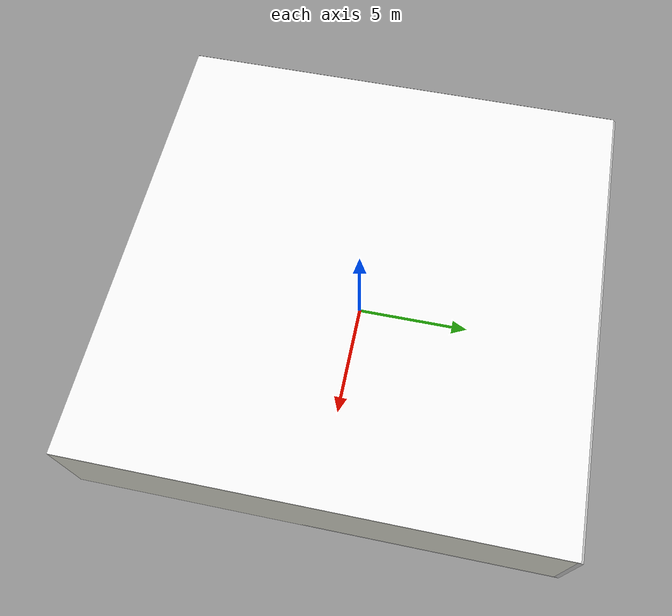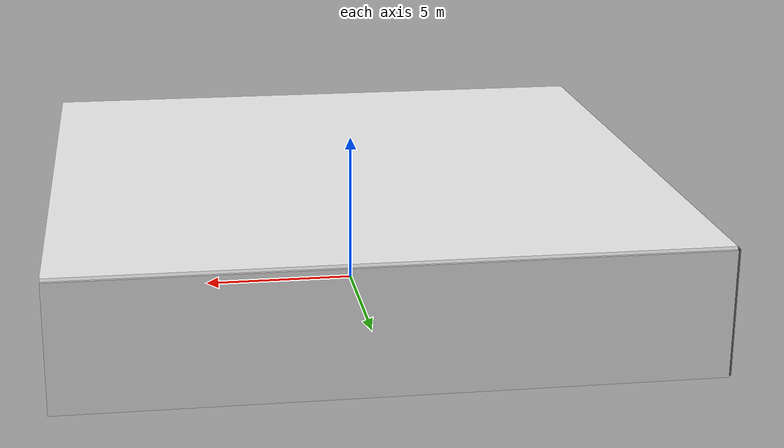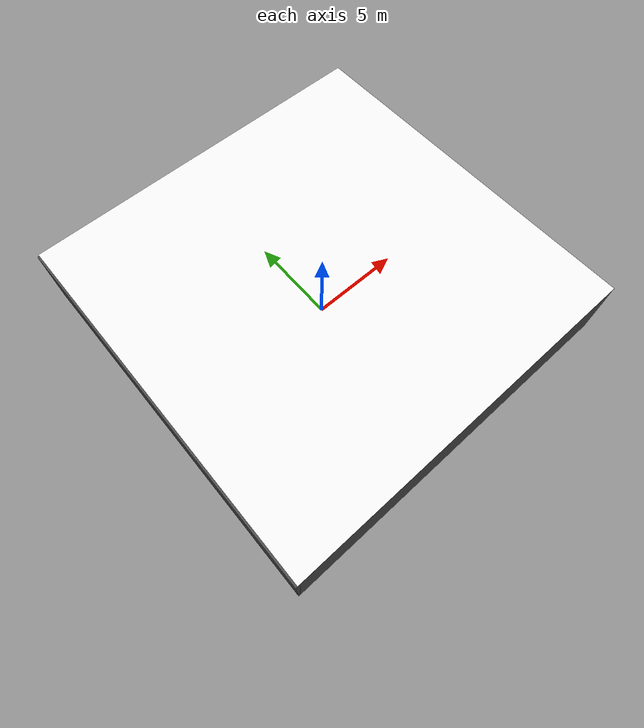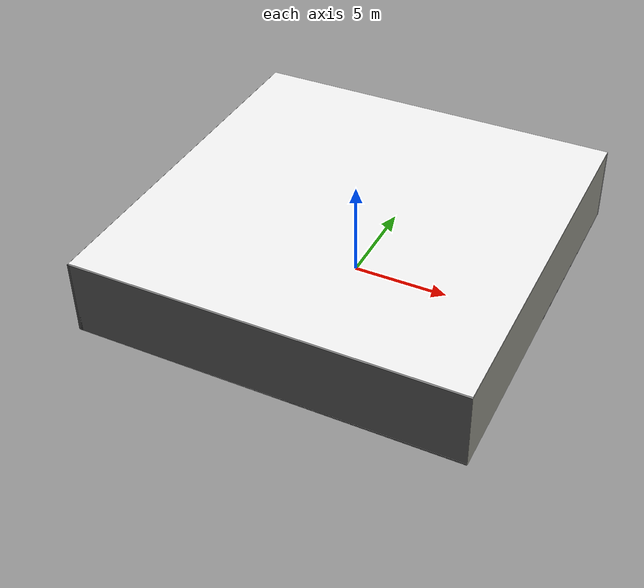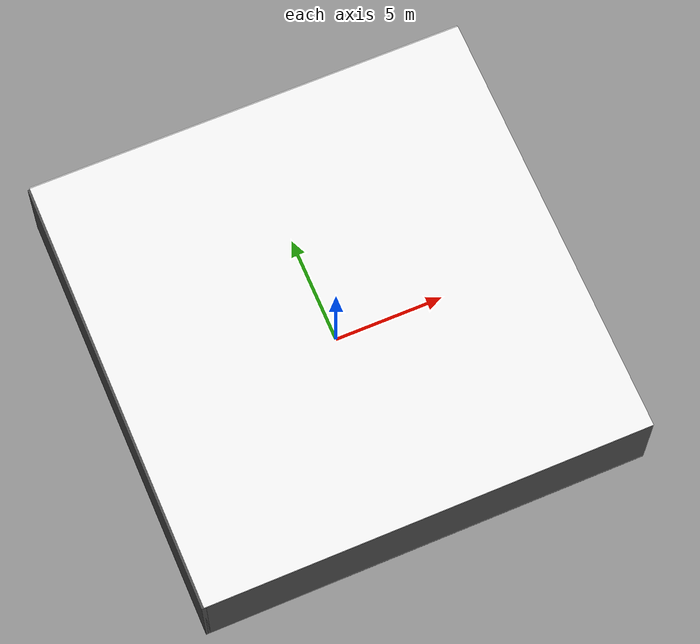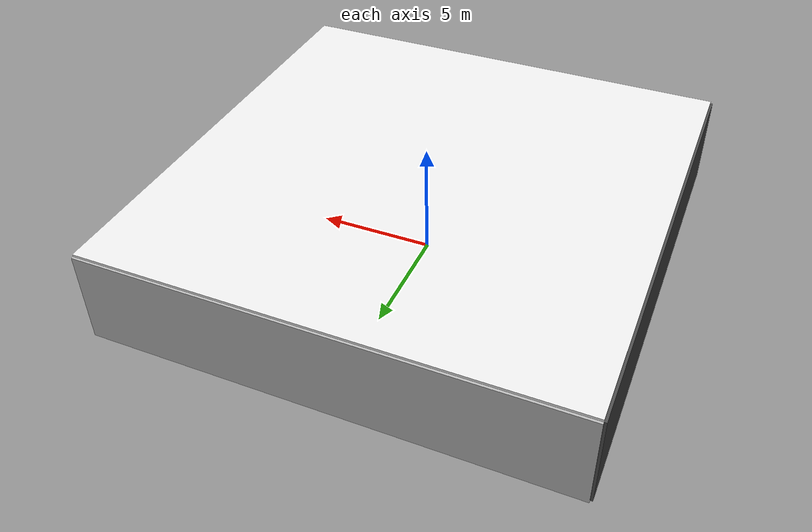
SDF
<sdf version="1.4">
 <world name="default">
  <physics type="ode">
   <max_step_size>0.001</max_step_size>
   <real_time_factor>1</real_time_factor>
   <real_time_update_rate>1000</real_time_update_rate>
   <gravity>0 0 -9.8</gravity>
  </physics>
  <scene><ambient>0.4 0.4 0.4 1</ambient><background>0.7 0.7 0.7 1</background><shadows>1</shadows></scene>
  <model name="Surrounding">
   <static>1</static>
   <link name="Ceiling">
    <collision name="Ceiling_Collision"><geometry><box><size>20 20 0.1</size></box></geometry></collision>
    <visual name="Ceiling_Visual">
     <geometry><box><size>20 20 0.1</size></box></geometry>
     <material>
      <script><uri>file://media/materials/scripts/gazebo.material</uri><name>Gazebo/WhiteGlow</name></script>
     </material>
    </visual>
    <pose>0 0 4.05 0 0 0</pose>
   </link>
   <link name="Wall_South">
    <collision name="Wall_South_Collision">
     <geometry><box><size>20 0 4</size></box></geometry>
     <pose>0 0 2 0 -0 0</pose>
    </collision>
    <visual name="Wall_South_Visual">
     <pose>0 0 2 0 -0 0</pose>
     <geometry><box><size>20 0 4</size></box></geometry>
     <material>
      <script><uri>file://media/materials/scripts/gazebo.material</uri><name>Gazebo/DarkGrey</name></script>
     </material>
    </visual>
    <velocity_decay><linear>0</linear><angular>0</angular></velocity_decay>
    <pose>0 -10 0 0 -0 0</pose>
   </link>
   <link name="Wall_East">
    <collision name="Wall_21_Collision">
     <geometry><box><size>20 0 4</size></box></geometry>
     <pose>0 0 2 0 -0 0</pose>
    </collision>
    <visual name="Wall_21_Visual">
     <pose>0 0 2 0 -0 0</pose>
     <geometry><box><size>20 0 4</size></box></geometry>
     <material>
      <script><uri>file://media/materials/scripts/gazebo.material</uri><name>Gazebo/PaintedWall</name></script>
     </material>
    </visual>
    <velocity_decay><linear>0</linear><angular>0</angular></velocity_decay>
    <pose>10 0 0 0 -0 1.5708</pose>
   </link>
   <link name="Wall_North">
    <collision name="Wall_22_Collision">
     <geometry><box><size>20 0.2 4</size></box></geometry>
     <pose>0 0 2 0 -0 0</pose>
    </collision>
    <visual name="Wall_22_Visual">
     <pose>0 0 2 0 -0 0</pose>
     <geometry><box><size>20 0.2 4</size></box></geometry>
     <material>
      <script><uri>file://media/materials/scripts/gazebo.material</uri><name>Gazebo/Pioneer2Body</name></script>
     </material>
    </visual>
    <velocity_decay><linear>0</linear><angular>0</angular></velocity_decay>
    <pose>0 10 0 0 -0 0</pose>
   </link>
   <link name="Wall_West">
    <collision name="Wall_23_Collision">
     <geometry><box><size>20 0.2 4</size></box></geometry>
     <pose>0 0 2 0 -0 0</pose>
    </collision>
    <visual name="Wall_23_Visual">
     <pose>0 0 2 0 -0 0</pose>
     <geometry><box><size>20 0.2 4</size></box></geometry>
     <material>
      <script><uri>file://media/materials/scripts/gazebo.material</uri><name>Gazebo/Road</name></script>
     </material>
    </visual>
    <velocity_decay><linear>0</linear><angular>0</angular></velocity_decay>
    <pose>-10 0 0 0 0 -1.5708</pose>
   </link>
   <link name="Ground_link">
    <collision name="collision">
     <pose>0 0 .05 0 -0 0</pose>
     <geometry><box><size>20 20 0.1</size></box></geometry>
    </collision>
    <visual name="visual">
     <pose>0 0 .05 0 -0 0</pose>
     <geometry><box><size>20 20 0.1</size></box></geometry>
     <material>
      <script><uri>file://media/materials/scripts/gazebo.material</uri><name>Gazebo/Black</name></script>
     </material>
    </visual>
   </link>
   <static>1</static>
  </model>
  <spherical_coordinates>
   <surface_model>EARTH_WGS84</surface_model>
   <latitude_deg>0</latitude_deg>
   <longitude_deg>0</longitude_deg>
   <elevation>0</elevation>
   <heading_deg>0</heading_deg>
  </spherical_coordinates>
  <light name="lightball_0" type="diffuse">
   <diffuse>0.8 0.8 0.8 1</diffuse>
   <specular>0.2 0.2 0.2 1</specular>
   <attenuation>
    <range>100</range>
    <constant>0.7</constant>
    <linear>0.01</linear>
    <quadratic>0.001</quadratic>
   </attenuation>
   <direction>-0.5 0.1 -0.9</direction>
   <pose>3.24932037256 9.31180125296 1.42068271055 0 0 0</pose>
  </light>
  <light name="lightball_1" type="diffuse">
   <diffuse>0.8 0.8 0.8 1</diffuse>
   <specular>0.2 0.2 0.2 1</specular>
   <attenuation>
    <range>100</range>
    <constant>0.7</constant>
    <linear>0.01</linear>
    <quadratic>0.001</quadratic>
   </attenuation>
   <direction>-0.5 0.1 -0.9</direction>
   <pose>0.478422904284 -7.68852330148 1.24766879094 0 0 0</pose>
  </light>
  <light name="lightball_2" type="diffuse">
   <diffuse>0.8 0.8 0.8 1</diffuse>
   <specular>0.2 0.2 0.2 1</specular>
   <attenuation>
    <range>100</range>
    <constant>0.7</constant>
    <linear>0.01</linear>
    <quadratic>0.001</quadratic>
   </attenuation>
   <direction>-0.5 0.1 -0.9</direction>
   <pose>6.51025885952 1.5298998375 1.91014062481 0 0 0</pose>
  </light>
  <light name="lightball_3" type="diffuse">
   <diffuse>0.8 0.8 0.8 1</diffuse>
   <specular>0.2 0.2 0.2 1</specular>
   <attenuation>
    <range>100</range>
    <constant>0.7</constant>
    <linear>0.01</linear>
    <quadratic>0.001</quadratic>
   </attenuation>
   <direction>-0.5 0.1 -0.9</direction>
   <pose>-6.64928570929 0.228717283472 3.06960036609 0 0 0</pose>
  </light>
  <light name="lightball_4" type="diffuse">
   <diffuse>0.8 0.8 0.8 1</diffuse>
   <specular>0.2 0.2 0.2 1</specular>
   <attenuation>
    <range>100</range>
    <constant>0.7</constant>
    <linear>0.01</linear>
    <quadratic>0.001</quadratic>
   </attenuation>
   <direction>-0.5 0.1 -0.9</direction>
   <pose>-1.90272742169 -2.59540500104 1.48916748438 0 0 0</pose>
  </light>
  <light name="lightball_5" type="diffuse">
   <diffuse>0.8 0.8 0.8 1</diffuse>
   <specular>0.2 0.2 0.2 1</specular>
   <attenuation>
    <range>100</range>
    <constant>0.7</constant>
    <linear>0.01</linear>
    <quadratic>0.001</quadratic>
   </attenuation>
   <direction>-0.5 0.1 -0.9</direction>
   <pose>-3.02551482447 -4.94441915291 2.24297690739 0 0 0</pose>
  </light>
  <light name="lightball_6" type="diffuse">
   <diffuse>0.8 0.8 0.8 1</diffuse>
   <specular>0.2 0.2 0.2 1</specular>
   <attenuation>
    <range>100</range>
    <constant>0.7</constant>
    <linear>0.01</linear>
    <quadratic>0.001</quadratic>
   </attenuation>
   <direction>-0.5 0.1 -0.9</direction>
   <pose>9.83342857971 -3.19755308853 2.8986087598 0 0 0</pose>
  </light>
  <light name="lightball_7" type="diffuse">
   <diffuse>0.8 0.8 0.8 1</diffuse>
   <specular>0.2 0.2 0.2 1</specular>
   <attenuation>
    <range>100</range>
    <constant>0.7</constant>
    <linear>0.01</linear>
    <quadratic>0.001</quadratic>
   </attenuation>
   <direction>-0.5 0.1 -0.9</direction>
   <pose>0.604689253883 6.38807149848 2.09576283541 0 0 0</pose>
  </light>
  <light name="lightball_8" type="diffuse">
   <diffuse>0.8 0.8 0.8 1</diffuse>
   <specular>0.2 0.2 0.2 1</specular>
   <attenuation>
    <range>100</range>
    <constant>0.7</constant>
    <linear>0.01</linear>
    <quadratic>0.001</quadratic>
   </attenuation>
   <direction>-0.5 0.1 -0.9</direction>
   <pose>-5.88860451361 -0.636788868928 3.33666383975 0 0 0</pose>
  </light>
  <light name="lightball_9" type="diffuse">
   <diffuse>0.8 0.8 0.8 1</diffuse>
   <specular>0.2 0.2 0.2 1</specular>
   <attenuation>
    <range>100</range>
    <constant>0.7</constant>
    <linear>0.01</linear>
    <quadratic>0.001</quadratic>
   </attenuation>
   <direction>-0.5 0.1 -0.9</direction>
   <pose>-5.3741701362 -3.97569940039 1.38324931987 0 0 0</pose>
  </light>
  <light name="lightball_10" type="diffuse">
   <diffuse>0.8 0.8 0.8 1</diffuse>
   <specular>0.2 0.2 0.2 1</specular>
   <attenuation>
    <range>100</range>
    <constant>0.7</constant>
    <linear>0.01</linear>
    <quadratic>0.001</quadratic>
   </attenuation>
   <direction>-0.5 0.1 -0.9</direction>
   <pose>8.56970944149 -7.82253663397 1.62891698767 0 0 0</pose>
  </light>
  <light name="lightball_11" type="diffuse">
   <diffuse>0.8 0.8 0.8 1</diffuse>
   <specular>0.2 0.2 0.2 1</specular>
   <attenuation>
    <range>100</range>
    <constant>0.7</constant>
    <linear>0.01</linear>
    <quadratic>0.001</quadratic>
   </attenuation>
   <direction>-0.5 0.1 -0.9</direction>
   <pose>-8.64015903196 -4.09781868701 2.89932511952 0 0 0</pose>
  </light>
  <include><uri>model://cabinet</uri><pose>-3.53664064014 -1.24581571656 0 0 0 1.12754612041</pose></include>
  <include>
   <uri>model://robocup_3Dsim_goal</uri>
   <pose>-5.15681337816 0.548218871027 0 0 0 1.42063213863</pose>
  </include>
  <include><uri>model://cabinet</uri><pose>-0.734546429595 -8.36229608914 0 0 0 1.13443167554</pose></include>
  <include>
   <uri>model://textured_shapes</uri>
   <pose>-0.785675885441 1.97442031474 0 0 0 1.24715052812</pose>
  </include>
  <include>
   <uri>model://textured_shapes</uri>
   <pose>0.476022056657 -3.6614307456 0 0 0 3.07680236838</pose>
  </include>
  <include><uri>model://cabinet</uri><pose>3.60296859292 1.25431071148 0 0 0 2.11512044676</pose></include>
  <include><uri>model://cabinet</uri><pose>4.84307216804 3.45754474545 0 0 0 0.853824070258</pose></include>
  <include>
   <uri>model://construction_cone</uri>
   <pose>6.71116030498 -4.79331680779 0 0 0 0.169331699194</pose>
  </include>
  <include><uri>model://table</uri><pose>6.36527912441 1.79477142888 0 0 0 0.496886626208</pose></include>
 </world>
</sdf>

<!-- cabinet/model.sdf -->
<sdf version="1.5">
  <model name="cabinet">
    <static>true</static>
    <link name="cabinet_bottom_plate">
      <inertial>
        <pose>0 0 -1 0 0 0</pose>
        <inertia>
          <ixx>2.050000</ixx>
          <ixy>0</ixy>
          <ixz>0</ixz>
          <iyy>2.050000</iyy>
          <iyz>0</iyz>
          <izz>2.050000</izz>
        </inertia>
        <mass>25.000000</mass>
      </inertial>
      <collision name="cabinet_bottom_plate_geom">
        <pose>0 0 0.010000 0 0 0</pose>
        <geometry>
          <box>
            <size>0.450000 0.450000 0.020000</size>
          </box>
        </geometry>
      </collision>
      <visual name="cabinet_bottom_plate_geom_visual">
        <pose>0 0 0.010000 0 0 0</pose>
        <geometry>
          <box>
            <size>0.450000 0.450000 0.020000</size>
          </box>
        </geometry>
        <material>
          <script>
            <uri>model://media/materials/scripts/gazebo.material</uri>
            <name>Gazebo/Wood</name>
          </script>
        </material>
      </visual>
      <collision name="cabinet_bottom_plate_geom_cabinet_back_plate">
        <pose>0.235000 0 0.510000 0 0 0</pose>
        <geometry>
          <box>
            <size>0.020000 0.450000 1.020000</size>
          </box>
        </geometry>
      </collision>
      <visual name="cabinet_bottom_plate_geom_cabinet_back_plate_visual">
        <pose>0.235000 0 0.510000 0 0 0</pose>
        <geometry>
          <box>
            <size>0.020000 0.450000 1.020000</size>
          </box>
        </geometry>
        <material>
          <script>
            <uri>model://media/materials/scripts/gazebo.material</uri>
            <name>Gazebo/Wood</name>
          </script>
        </material>
      </visual>
      <collision name="cabinet_bottom_plate_geom_cabinet_left_plate">
        <pose>0 0.235000 0.510000 0 0 0</pose>
        <geometry>
          <box>
            <size>0.450000 0.020000 1.020000</size>
          </box>
        </geometry>
      </collision>
      <visual name="cabinet_bottom_plate_geom_cabinet_left_plate_visual">
        <pose>0 0.235000 0.510000 0 0 0</pose>
        <geometry>
          <box>
            <size>0.450000 0.020000 1.020000</size>
          </box>
        </geometry>
        <material>
          <script>
            <uri>model://media/materials/scripts/gazebo.material</uri>
            <name>Gazebo/Wood</name>
          </script>
        </material>
      </visual>
      <collision name="cabinet_bottom_plate_geom_cabinet_middle_plate">
        <pose>0 0 0.510000 0 0 0</pose>
        <geometry>
          <box>
            <size>0.450000 0.450000 0.020000</size>
          </box>
        </geometry>
      </collision>
      <visual name="cabinet_bottom_plate_geom_cabinet_middle_plate_visual">
        <pose>0 0 0.510000 0 0 0</pose>
        <geometry>
          <box>
            <size>0.450000 0.450000 0.020000</size>
          </box>
        </geometry>
        <material>
          <script>
            <uri>model://media/materials/scripts/gazebo.material</uri>
            <name>Gazebo/Wood</name>
          </script>
        </material>
      </visual>
      <collision name="cabinet_bottom_plate_geom_cabinet_right_plate">
        <pose>0 -0.235000 0.510000 0 0 0</pose>
        <geometry>
          <box>
            <size>0.450000 0.020000 1.020000</size>
          </box>
        </geometry>
      </collision>
      <visual name="cabinet_bottom_plate_geom_cabinet_right_plate_visual">
        <pose>0 -0.235000 0.510000 0 0 0</pose>
        <geometry>
          <box>
            <size>0.450000 0.020000 1.020000</size>
          </box>
        </geometry>
        <material>
          <script>
            <uri>model://media/materials/scripts/gazebo.material</uri>
            <name>Gazebo/Wood</name>
          </script>
        </material>
      </visual>
      <collision name="cabinet_bottom_plate_geom_cabinet_top_plate">
        <pose>0 0 1.010000 0 0 0</pose>
        <geometry>
          <box>
            <size>0.450000 0.450000 0.020000</size>
          </box>
        </geometry>
      </collision>
      <visual name="cabinet_bottom_plate_geom_cabinet_top_plate_visual">
        <pose>0 0 1.010000 0 0 0</pose>
        <geometry>
          <box>
            <size>0.450000 0.450000 0.020000</size>
          </box>
        </geometry>
        <material>
          <script>
            <uri>model://media/materials/scripts/gazebo.material</uri>
            <name>Gazebo/Wood</name>
          </script>
        </material>
      </visual>
    </link>
  </model>
</sdf>

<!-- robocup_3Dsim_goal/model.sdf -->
<sdf version="1.5">
  <model name="robocup_3d_goal">
    <static>true</static>
    <link name="left_post">
      <pose>0 1.05 0.45 0 0 0</pose>
      <collision name="collision">
        <geometry>
          <cylinder>
            <radius>0.05</radius>
            <length>0.9</length>
          </cylinder>
        </geometry>
      </collision>
      <visual name="visual">
        <geometry>
          <cylinder>
            <radius>0.05</radius>
            <length>0.9</length>
          </cylinder>
        </geometry>
        <material>
          <script>
            <uri>file://media/materials/scripts/gazebo.material</uri>
            <name>Gazebo/ZincYellow</name>
          </script>
        </material>
      </visual>
    </link>
    <link name="left_support_horiz_lower">
      <pose>0.30 1.05 0.01 0 0 0</pose>
      <collision name="collision">
        <geometry>
          <box>
            <size>0.50 0.02 0.02</size>
          </box>
        </geometry>
      </collision>
      <visual name="visual">
        <geometry>
          <box>
            <size>0.50 0.02 0.02</size>
          </box>
        </geometry>
        <material>
          <script>
            <uri>file://media/materials/scripts/gazebo.material</uri>
            <name>Gazebo/White</name>
          </script>
        </material>
      </visual>
    </link>
    <link name="left_support_horiz_upper">
      <pose>0.30 1.05 0.79 0 0 0</pose>
      <collision name="collision">
        <geometry>
          <box>
            <size>0.50 0.02 0.02</size>
          </box>
        </geometry>
      </collision>
      <visual name="visual">
        <geometry>
          <box>
            <size>0.50 0.02 0.02</size>
          </box>
        </geometry>
        <material>
          <script>
            <uri>file://media/materials/scripts/gazebo.material</uri>
            <name>Gazebo/White</name>
          </script>
        </material>
      </visual>
    </link>
    <link name="left_support_vertical">
      <pose>0.56 1.05 0.4 0 1.5708 0</pose>
      <collision name="collision">
        <geometry>
          <box>
            <size>0.80 0.02 0.02</size>
          </box>
        </geometry>
      </collision>
      <visual name="visual">
        <geometry>
          <box>
            <size>0.80 0.02 0.02</size>
          </box>
        </geometry>
        <material>
          <script>
            <uri>file://media/materials/scripts/gazebo.material</uri>
            <name>Gazebo/White</name>
          </script>
        </material>
      </visual>
    </link>
    <link name="right_support_horiz_lower">
      <pose>0.30 -1.05 0.01 0 0 0</pose>
      <collision name="collision">
        <geometry>
          <box>
            <size>0.50 0.02 0.02</size>
          </box>
        </geometry>
      </collision>
      <visual name="visual">
        <geometry>
          <box>
            <size>0.50 0.02 0.02</size>
          </box>
        </geometry>
        <material>
          <script>
            <uri>file://media/materials/scripts/gazebo.material</uri>
            <name>Gazebo/White</name>
          </script>
        </material>
      </visual>
    </link>
    <link name="right_support_horiz_upper">
      <pose>0.30 -1.05 0.79 0 0 0</pose>
      <collision name="collision">
        <geometry>
          <box>
            <size>0.50 0.02 0.02</size>
          </box>
        </geometry>
      </collision>
      <visual name="visual">
        <geometry>
          <box>
            <size>0.50 0.02 0.02</size>
          </box>
        </geometry>
        <material>
          <script>
            <uri>file://media/materials/scripts/gazebo.material</uri>
            <name>Gazebo/White</name>
          </script>
        </material>
      </visual>
    </link>
    <link name="right_support_vertical">
      <pose>0.56 -1.05 0.4 0 1.5708 0</pose>
      <collision name="collision">
        <geometry>
          <box>
            <size>0.80 0.02 0.02</size>
          </box>
        </geometry>
      </collision>
      <visual name="visual">
        <geometry>
          <box>
            <size>0.80 0.02 0.02</size>
          </box>
        </geometry>
        <material>
          <script>
            <uri>file://media/materials/scripts/gazebo.material</uri>
            <name>Gazebo/White</name>
          </script>
        </material>
      </visual>
    </link>
    <link name="center_support_horiz_lower">
      <pose>0.56 0 0.01 0 1.5708 0</pose>
      <collision name="collision">
        <geometry>
          <box>
            <size>0.02 2.08 0.02</size>
          </box>
        </geometry>
      </collision>
      <visual name="visual">
        <geometry>
          <box>
            <size>0.02 2.08 0.02</size>
          </box>
        </geometry>
        <material>
          <script>
            <uri>file://media/materials/scripts/gazebo.material</uri>
            <name>Gazebo/White</name>
          </script>
        </material>
      </visual>
    </link>
    <link name="center_support_horiz_upper">
      <pose>0.56 0 0.79 0 1.5708 0</pose>
      <collision name="collision">
        <geometry>
          <box>
            <size>0.02 2.08 0.02</size>
          </box>
        </geometry>
      </collision>
      <visual name="visual">
        <geometry>
          <box>
            <size>0.02 2.08 0.02</size>
          </box>
        </geometry>
        <material>
          <script>
            <uri>file://media/materials/scripts/gazebo.material</uri>
            <name>Gazebo/White</name>
          </script>
        </material>
      </visual>
    </link>
    <link name="right_post">
      <pose>0 -1.05 0.45 0 0 0</pose>
      <collision name="collision">
        <geometry>
          <cylinder>
            <radius>0.05</radius>
            <length>0.9</length>
          </cylinder>
        </geometry>
      </collision>
      <visual name="visual">
        <geometry>
          <cylinder>
            <radius>0.05</radius>
            <length>0.9</length>
          </cylinder>
        </geometry>
        <material>
          <script>
            <uri>file://media/materials/scripts/gazebo.material</uri>
            <name>Gazebo/ZincYellow</name>
          </script>
        </material>
      </visual>
    </link>
    <link name="crossbar">
      <pose>0 0 0.85 1.57 1.57 0</pose>
      <collision name="collision">
        <geometry>
          <cylinder>
            <radius>0.05</radius>
            <length>2.0</length>
          </cylinder>
        </geometry>
      </collision>
      <visual name="visual">
        <geometry>
          <cylinder>
            <radius>0.05</radius>
            <length>2.0</length>
          </cylinder>
        </geometry>
        <material>
          <script>
            <uri>file://media/materials/scripts/gazebo.material</uri>
            <name>Gazebo/ZincYellow</name>
          </script>
        </material>
      </visual>
    </link>
    <link name="center_net">
      <pose>0.56 0 0.40 0 0 0</pose>
      <collision name="collision">
        <geometry>
          <box>
            <size>0.01 2.1 0.80</size>
          </box>
        </geometry>
      </collision>
      <visual name="visual">
        <geometry>
          <box>
            <size>0.01 2.1 0.80</size>
          </box>
        </geometry>
        <material>
          <script>
            <uri>model://../model_source/models/robocup09_spl_field/materials/scripts/</uri>
            <uri>model://../model_source/models/robocup09_spl_field/materials/textures/</uri>
            <name>RoboCup/Net</name>
          </script>
        </material>
      </visual>
    </link>
    <link name="left_net">
      <pose>0.30 1.05 0.40 0 0 0</pose>
      <collision name="collision">
        <geometry>
          <box>
            <size>0.50 0.01 0.76</size>
          </box>
        </geometry>
      </collision>
      <visual name="visual">
        <geometry>
          <box>
            <size>0.50 0.01 0.76</size>
          </box>
        </geometry>
        <material>
          <script>
            <uri>model://../model_source/models/robocup09_spl_field/materials/scripts/</uri>
            <uri>model://../model_source/models/robocup09_spl_field/materials/textures/</uri>
            <name>RoboCup/Net</name>
          </script>
        </material>
      </visual>
    </link>
    <link name="right_net">
      <pose>0.30 -1.05 0.40 0 0 0</pose>
      <collision name="collision">
        <geometry>
          <box>
            <size>0.50 0.01 0.76</size>
          </box>
        </geometry>
      </collision>
      <visual name="visual">
        <geometry>
          <box>
            <size>0.50 0.01 0.76</size>
          </box>
        </geometry>
        <material>
          <script>
            <uri>model://../model_source/models/robocup09_spl_field/materials/scripts/</uri>
            <uri>model://../model_source/models/robocup09_spl_field/materials/textures/</uri>
            <name>RoboCup/Net</name>
          </script>
        </material>
      </visual>
    </link>
  </model>
</sdf>

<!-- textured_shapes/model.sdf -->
<sdf version="1.6">
  <model name="textured_shapes">
    <pose>0 0 0.5 0 0 0</pose>
    <link name="box">
      <pose>0 -1.5 0 0 0 0</pose>
      <collision name="collision">
        <geometry>
          <box>
            <size>1 1 1</size>
          </box>
        </geometry>
      </collision>
      <visual name="visual">
        <geometry>
          <box>
            <size>1 1 1</size>
          </box>
        </geometry>
        <material>
          <script>
            <uri>model://../model_source/models/textured_shapes/materials/scripts</uri>
            <uri>model://../model_source/models/textured_shapes/materials/textures</uri>
            <name>TexturedShape/Squares</name>
          </script>
        </material>
      </visual>
    </link>
    <link name="sphere">
      <collision name="collision">
        <geometry>
          <sphere>
            <radius>0.5</radius>
          </sphere>
        </geometry>
      </collision>
      <visual name="visual">
        <geometry>
          <sphere>
            <radius>0.5</radius>
          </sphere>
        </geometry>
        <material>
          <script>
            <uri>model://../model_source/models/textured_shapes/materials/scripts</uri>
            <uri>model://../model_source/models/textured_shapes/materials/textures</uri>
            <name>TexturedShape/Squares</name>
          </script>
        </material>
      </visual>
    </link>
    <link name="cylinder">
      <pose>0 1.5 0 0 0 0</pose>
      <collision name="collision">
        <geometry>
          <cylinder>
            <radius>0.5</radius>
            <length>1</length>
          </cylinder>
        </geometry>
      </collision>
      <visual name="visual">
        <geometry>
          <cylinder>
            <radius>0.5</radius>
            <length>1</length>
          </cylinder>
        </geometry>
        <material>
          <script>
            <uri>model://../model_source/models/textured_shapes/materials/scripts</uri>
            <uri>model://../model_source/models/textured_shapes/materials/textures</uri>
            <name>TexturedShape/Squares</name>
          </script>
        </material>
      </visual>
    </link>
  </model>
</sdf>

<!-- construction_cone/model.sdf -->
<sdf version="1.5">
  <model name="Construction Cone">
    <link name="link">
      <collision name="collision">
        <geometry>
          <mesh>
            <scale>10 10 10</scale>
            <uri>file://isr-testbed/construction_cone/meshes/construction_cone.dae</uri>
          </mesh>
        </geometry>
      </collision>
      <visual name="visual">
        <geometry>
          <mesh>
            <scale>10 10 10</scale>
            <uri>file://isr-testbed/construction_cone/meshes/construction_cone.dae</uri>
          </mesh>
        </geometry>
      </visual>
    </link>
  </model>
</sdf>

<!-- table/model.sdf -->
<sdf version="1.5">
  <model name="table">
    <static>true</static>
    <link name="link">
      <collision name="surface">
        <pose>0 0 1.0 0 0 0</pose>
        <geometry>
          <box>
            <size>1.5 0.8 0.03</size>
          </box>
        </geometry>
        <surface>
          <friction>
            <ode>
              <mu>0.6</mu>
              <mu2>0.6</mu2>
            </ode>
          </friction>
        </surface>
      </collision>
      <visual name="visual1">
        <pose>0 0 1.0 0 0 0</pose>
        <geometry>
          <box>
            <size>1.5 0.8 0.03</size>
          </box>
        </geometry>
        <material>
          <script>
            <uri>model://media/materials/scripts/gazebo.material</uri>
            <name>Gazebo/Wood</name>
          </script>
        </material>
      </visual>
      <collision name="front_left_leg">
        <pose>0.68 0.38 0.5 0 0 0</pose>
        <geometry>
          <cylinder>
            <radius>0.02</radius>
            <length>1.0</length>
          </cylinder>
        </geometry>
      </collision>
      <visual name="front_left_leg">
        <pose>0.68 0.38 0.5 0 0 0</pose>
        <geometry>
          <cylinder>
            <radius>0.02</radius>
            <length>1.0</length>
          </cylinder>
        </geometry>
        <material>
          <script>
            <uri>model://media/materials/scripts/gazebo.material</uri>
            <name>Gazebo/Grey</name>
          </script>
        </material>
      </visual>
      <collision name="front_right_leg">
        <pose>0.68 -0.38 0.5 0 0 0</pose>
        <geometry>
          <cylinder>
            <radius>0.02</radius>
            <length>1.0</length>
          </cylinder>
        </geometry>
      </collision>
      <visual name="front_right_leg">
        <pose>0.68 -0.38 0.5 0 0 0</pose>
        <geometry>
          <cylinder>
            <radius>0.02</radius>
            <length>1.0</length>
          </cylinder>
        </geometry>
        <material>
          <script>
            <uri>model://media/materials/scripts/gazebo.material</uri>
            <name>Gazebo/Grey</name>
          </script>
        </material>
      </visual>
      <collision name="back_right_leg">
        <pose>-0.68 -0.38 0.5 0 0 0</pose>
        <geometry>
          <cylinder>
            <radius>0.02</radius>
            <length>1.0</length>
          </cylinder>
        </geometry>
      </collision>
      <visual name="back_right_leg">
        <pose>-0.68 -0.38 0.5 0 0 0</pose>
        <geometry>
          <cylinder>
            <radius>0.02</radius>
            <length>1.0</length>
          </cylinder>
        </geometry>
        <material>
          <script>
            <uri>model://media/materials/scripts/gazebo.material</uri>
            <name>Gazebo/Grey</name>
          </script>
        </material>
      </visual>
      <collision name="back_left_leg">
        <pose>-0.68 0.38 0.5 0 0 0</pose>
        <geometry>
          <cylinder>
            <radius>0.02</radius>
            <length>1.0</length>
          </cylinder>
        </geometry>
      </collision>
      <visual name="back_left_leg">
        <pose>-0.68 0.38 0.5 0 0 0</pose>
        <geometry>
          <cylinder>
            <radius>0.02</radius>
            <length>1.0</length>
          </cylinder>
        </geometry>
        <material>
          <script>
            <uri>model://media/materials/scripts/gazebo.material</uri>
            <name>Gazebo/Grey</name>
          </script>
        </material>
      </visual>
    </link>
  </model>
</sdf>
